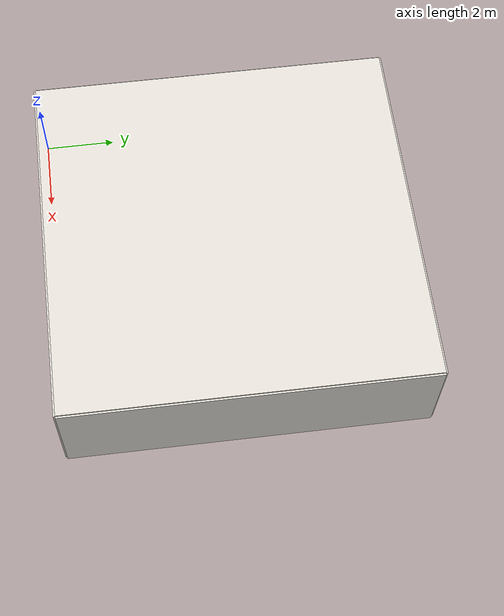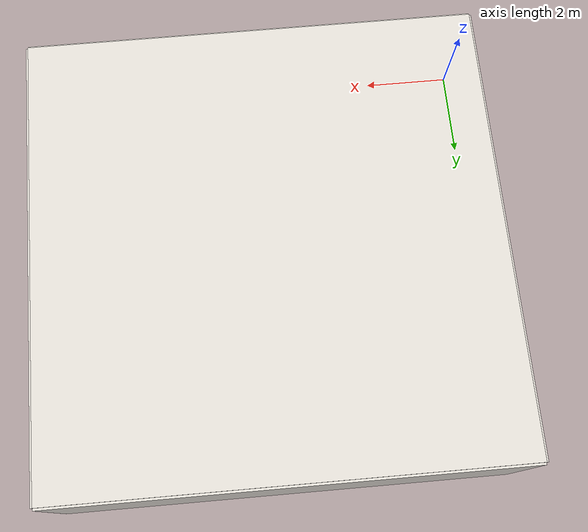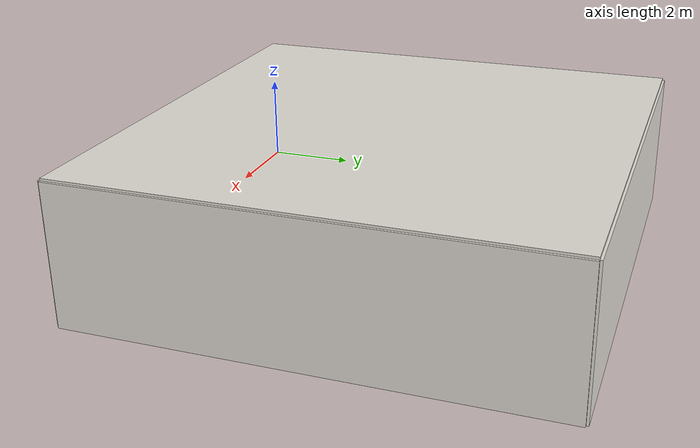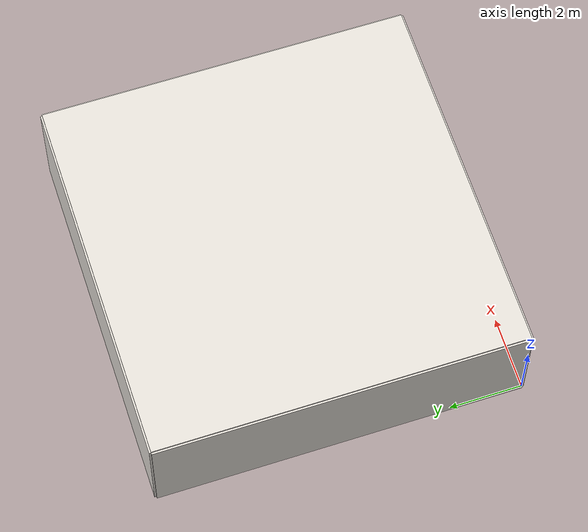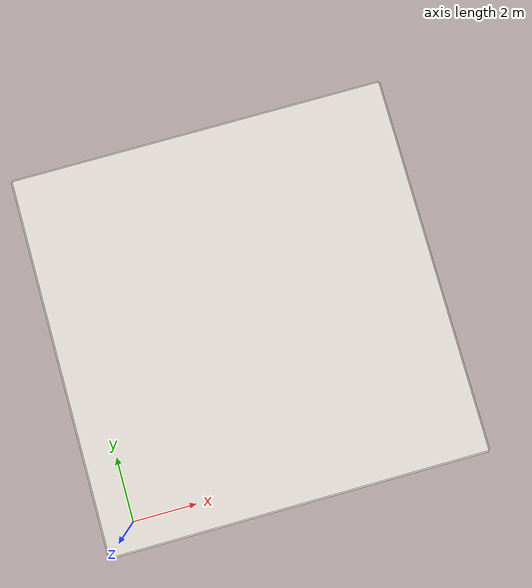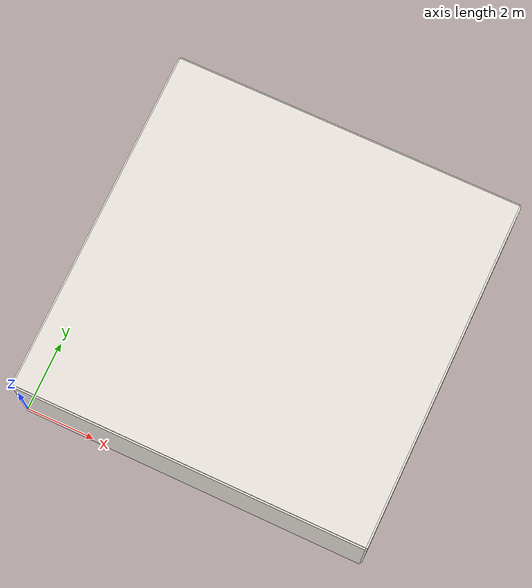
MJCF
<mujoco model="drone_home">

  <!-- ─── Compiler & global options ─────────────────────────────────── -->
  <compiler angle="radian" autolimits="true"/>

  <option
    timestep="0.002"
    gravity="0 0 -9.81"
    integrator="RK4"
    solver="Newton"
    iterations="20"
    tolerance="1e-10"
    impratio="10"
    density="1.2"
    viscosity="1.8e-5"
  />

  <!-- ─── Assets: materials & meshes ────────────────────────────────── -->
  <asset>
    <!-- Floor -->
    <texture name="floor_tex" type="2d" builtin="checker"
             rgb1="0.85 0.82 0.78" rgb2="0.72 0.68 0.62"
             width="512" height="512"/>
    <material name="floor_mat" texture="floor_tex" texrepeat="10 10" reflectance="0.05"/>

    <!-- Walls -->
    <material name="wall_mat" rgba="0.90 0.88 0.85 1.0"/>

    <!-- Drone body -->
    <material name="drone_mat" rgba="0.15 0.15 0.15 1.0" specular="0.4" shininess="0.3"/>
    <material name="arm_mat"   rgba="0.20 0.20 0.20 1.0"/>
    <material name="prop_mat"  rgba="0.08 0.08 0.08 0.85" specular="0.2"/>

    <!-- Household objects -->
    <material name="terracotta" rgba="0.72 0.40 0.20 1.0"/>
    <material name="foliage"    rgba="0.10 0.60 0.10 1.0" specular="0.05"/>
    <material name="soil"       rgba="0.35 0.25 0.12 1.0"/>
    <material name="zone_mat"   rgba="0.65 0.45 0.20 0.5"/>
    <material name="switch_plate" rgba="0.95 0.95 0.95 1.0" specular="0.3"/>
    <material name="switch_paddle" rgba="1.00 0.90 0.00 1.0" specular="0.2"/>

    <!-- Per-drone accent colours (bodies are tinted via rgba override in each body) -->
    <material name="drone0_mat" rgba="0.15 0.65 1.00 0.9" specular="0.5"/>
    <material name="drone1_mat" rgba="1.00 0.45 0.05 0.9" specular="0.5"/>
    <material name="drone2_mat" rgba="0.20 0.90 0.35 0.9" specular="0.5"/>
    <material name="drone3_mat" rgba="0.90 0.15 0.80 0.9" specular="0.5"/>
    <material name="drone4_mat" rgba="1.00 0.95 0.10 0.9" specular="0.5"/>
    <material name="drone5_mat" rgba="0.10 0.85 0.90 0.9" specular="0.5"/>
    <material name="drone6_mat" rgba="1.00 0.25 0.25 0.9" specular="0.5"/>
    <material name="drone7_mat" rgba="0.70 0.40 1.00 0.9" specular="0.5"/>
  </asset>

  <!-- ─── Defaults: joint & actuator limits ─────────────────────────── -->
  <default>
    <joint damping="0.01" armature="0.001"/>
    <geom condim="3" friction="0.8 0.02 0.01"/>

    <!-- Rotor spin joints (free to rotate, no limits) -->
    <default class="rotor_joint">
      <joint type="hinge" axis="0 0 1" damping="1e-6" armature="1e-7"/>
    </default>

    <!-- Propeller geometry — thin disc approximation -->
    <default class="prop_geom">
      <geom type="cylinder" size="0.023 0.002" material="prop_mat"
            contype="0" conaffinity="0"/>
    </default>

    <!-- Arm geom — thin capsule -->
    <default class="arm_geom">
      <geom type="capsule" size="0.005" material="arm_mat"
            contype="0" conaffinity="0"/>
    </default>
  </default>

  <!-- ─── World body ─────────────────────────────────────────────────── -->
  <worldbody>

    <!-- Lighting -->
    <light name="ceiling_main" pos="5 5 2.9" dir="0 0 -1"
           diffuse="0.85 0.85 0.80" specular="0.3 0.3 0.3" castshadow="true"/>
    <light name="ceiling_fill" pos="2 8 2.9" dir="0 0 -1"
           diffuse="0.4 0.4 0.38" specular="0.1 0.1 0.1" castshadow="false"/>

    <!-- Floor (10×10 m tile) -->
    <geom name="floor" type="plane"
          pos="5 5 0" size="5 5 0.1"
          material="floor_mat" condim="3"/>

    <!-- Walls: N, S, E, W (thin boxes, 3 m tall) -->
    <geom name="wall_n" type="box"
          pos="5 10 1.5" size="5 0.05 1.5" material="wall_mat" conaffinity="1"/>
    <geom name="wall_s" type="box"
          pos="5 0  1.5" size="5 0.05 1.5" material="wall_mat" conaffinity="1"/>
    <geom name="wall_e" type="box"
          pos="10 5 1.5" size="0.05 5 1.5" material="wall_mat" conaffinity="1"/>
    <geom name="wall_w" type="box"
          pos="0  5 1.5" size="0.05 5 1.5" material="wall_mat" conaffinity="1"/>
    <!-- Ceiling -->
    <geom name="ceiling" type="box"
          pos="5 5 3.0" size="5 5 0.05" material="wall_mat" conaffinity="1"/>

    <!-- ── Plant pot 0 — pos (2.0, 3.0) ─────────────────────────── -->
    <body name="plant_pot_0" pos="2.0 3.0 0.0">
      <!-- Terracotta pot body -->
      <geom name="pot0_body" type="cylinder" size="0.17 0.225"
            pos="0 0 0.225" material="terracotta" mass="0.5"/>
      <!-- Soil surface -->
      <geom name="pot0_soil" type="cylinder" size="0.16 0.01"
            pos="0 0 0.46" material="soil" contype="0" conaffinity="0"/>
      <!-- Foliage — layered spheres for a bushy look -->
      <geom name="pot0_foliage0" type="sphere" size="0.28"
            pos="0 0 0.78" material="foliage" contype="0" conaffinity="0"/>
      <geom name="pot0_foliage1" type="sphere" size="0.20"
            pos="0.15 0.10 0.95" material="foliage" contype="0" conaffinity="0"/>
      <geom name="pot0_foliage2" type="sphere" size="0.18"
            pos="-0.12 -0.08 0.92" material="foliage" contype="0" conaffinity="0"/>
    </body>

    <!-- ── Plant pot 1 — pos (7.0, 1.5) ─────────────────────────── -->
    <body name="plant_pot_1" pos="7.0 1.5 0.0">
      <geom name="pot1_body" type="cylinder" size="0.17 0.225"
            pos="0 0 0.225" material="terracotta" mass="0.5"/>
      <geom name="pot1_soil" type="cylinder" size="0.16 0.01"
            pos="0 0 0.46" material="soil" contype="0" conaffinity="0"/>
      <geom name="pot1_foliage0" type="sphere" size="0.30"
            pos="0 0 0.80" material="foliage" contype="0" conaffinity="0"/>
      <geom name="pot1_foliage1" type="sphere" size="0.18"
            pos="-0.17 0.12 0.98" material="foliage" contype="0" conaffinity="0"/>
      <geom name="pot1_foliage2" type="sphere" size="0.22"
            pos="0.10 -0.15 0.95" material="foliage" contype="0" conaffinity="0"/>
    </body>

    <!-- ── Plant pot 2 — pos (3.0, 7.0) ─────────────────────────── -->
    <body name="plant_pot_2" pos="3.0 7.0 0.0">
      <geom name="pot2_body" type="cylinder" size="0.17 0.225"
            pos="0 0 0.225" material="terracotta" mass="0.5"/>
      <geom name="pot2_soil" type="cylinder" size="0.16 0.01"
            pos="0 0 0.46" material="soil" contype="0" conaffinity="0"/>
      <geom name="pot2_foliage0" type="sphere" size="0.26"
            pos="0 0 0.75" material="foliage" contype="0" conaffinity="0"/>
      <geom name="pot2_foliage1" type="sphere" size="0.19"
            pos="0.13 -0.11 0.93" material="foliage" contype="0" conaffinity="0"/>
    </body>

    <!-- ── Floor zone 0 — sweep area (5.0, 5.0) ─────────────────── -->
    <geom name="floor_zone_0" type="box"
          pos="5.0 5.0 0.01" size="1.5 1.5 0.01"
          material="zone_mat" contype="0" conaffinity="0"/>

    <!-- ── Floor zone 1 — sweep area (2.0, 8.0) ─────────────────── -->
    <geom name="floor_zone_1" type="box"
          pos="2.0 8.0 0.01" size="1.5 1.5 0.01"
          material="zone_mat" contype="0" conaffinity="0"/>

    <!-- ── Light switch 0 — north wall (9.0, 0.5) at 2.0 m height ─ -->
    <body name="light_switch_0" pos="9.9 0.5 1.5">
      <!-- Back plate mounted flush on east wall (faces -x) -->
      <geom name="ls0_plate"  type="box" size="0.05 0.15 0.20"
            material="switch_plate" mass="0.15"/>
      <geom name="ls0_paddle" type="box" size="0.03 0.08 0.14"
            pos="-0.05 0.0 0.0" material="switch_paddle"
            contype="0" conaffinity="0"/>
    </body>

    <!-- ── Light switch 1 — west wall (0.5, 9.0) at 2.0 m height ── -->
    <body name="light_switch_1" pos="0.1 9.0 1.5">
      <geom name="ls1_plate"  type="box" size="0.05 0.15 0.20"
            material="switch_plate" mass="0.15"/>
      <geom name="ls1_paddle" type="box" size="0.03 0.08 0.14"
            pos="0.05 0.0 0.0" material="switch_paddle"
            contype="0" conaffinity="0"/>
    </body>

    <body name="drone_0" pos="1.0 1.0 0.3">
      <freejoint name="drone_0_freejoint"/>

      <!-- Central body box -->
      <geom name="drone_0_body" type="box"
            size="0.019 0.019 0.006"
            material="drone0_mat" mass="0.020"
            condim="3"/>

      <!-- Battery slab (bottom, heavier — lowers CoM for stability) -->
      <geom name="drone_0_batt" type="box"
            size="0.016 0.012 0.004" pos="0 0 -0.007"
            rgba="0.1 0.1 0.4 1.0" mass="0.007"
            contype="0" conaffinity="0"/>

      <!-- Arms (4 × diagonal capsule) -->
      <geom class="arm_geom" name="drone_0_arm0"
            fromto="0 0 0  0.0326  0.0326 0"/>
      <geom class="arm_geom" name="drone_0_arm1"
            fromto="0 0 0  0.0326 -0.0326 0"/>
      <geom class="arm_geom" name="drone_0_arm2"
            fromto="0 0 0 -0.0326  0.0326 0"/>
      <geom class="arm_geom" name="drone_0_arm3"
            fromto="0 0 0 -0.0326 -0.0326 0"/>

      <!-- Motor mounts + rotors (each motor body has mass + inertia) -->
      <!-- Motor 0 — front-right (+x+y), CW -->
      <body name="drone_0_motor0" pos="0.0326 0.0326 0.004">
        <geom type="cylinder" size="0.006 0.004" rgba="0.3 0.3 0.3 1.0"
              mass="0.002" contype="0" conaffinity="0"/>
        <joint name="drone_0_rotor0" class="rotor_joint"/>
        <geom class="prop_geom" name="drone_0_prop0" pos="0 0 0.004"/>
      </body>
      <!-- Motor 1 — front-left (+x-y), CCW -->
      <body name="drone_0_motor1" pos="0.0326 -0.0326 0.004">
        <geom type="cylinder" size="0.006 0.004" rgba="0.3 0.3 0.3 1.0"
              mass="0.002" contype="0" conaffinity="0"/>
        <joint name="drone_0_rotor1" class="rotor_joint"/>
        <geom class="prop_geom" name="drone_0_prop1" pos="0 0 0.004"/>
      </body>
      <!-- Motor 2 — rear-right (-x+y), CCW -->
      <body name="drone_0_motor2" pos="-0.0326 0.0326 0.004">
        <geom type="cylinder" size="0.006 0.004" rgba="0.3 0.3 0.3 1.0"
              mass="0.002" contype="0" conaffinity="0"/>
        <joint name="drone_0_rotor2" class="rotor_joint"/>
        <geom class="prop_geom" name="drone_0_prop2" pos="0 0 0.004"/>
      </body>
      <!-- Motor 3 — rear-left (-x-y), CW -->
      <body name="drone_0_motor3" pos="-0.0326 -0.0326 0.004">
        <geom type="cylinder" size="0.006 0.004" rgba="0.3 0.3 0.3 1.0"
              mass="0.002" contype="0" conaffinity="0"/>
        <joint name="drone_0_rotor3" class="rotor_joint"/>
        <geom class="prop_geom" name="drone_0_prop3" pos="0 0 0.004"/>
      </body>

      <!-- IMU site (used to read accelerometer / gyro in code) -->
      <site name="drone_0_imu" pos="0 0 0" size="0.003"/>
    </body>

    <body name="drone_1" pos="2.0 1.0 0.3">
      <freejoint name="drone_1_freejoint"/>
      <geom name="drone_1_body" type="box" size="0.019 0.019 0.006"
            material="drone1_mat" mass="0.020" condim="3"/>
      <geom name="drone_1_batt" type="box" size="0.016 0.012 0.004"
            pos="0 0 -0.007" rgba="0.1 0.1 0.4 1.0" mass="0.007"
            contype="0" conaffinity="0"/>
      <geom class="arm_geom" name="drone_1_arm0"
            fromto="0 0 0  0.0326  0.0326 0"/>
      <geom class="arm_geom" name="drone_1_arm1"
            fromto="0 0 0  0.0326 -0.0326 0"/>
      <geom class="arm_geom" name="drone_1_arm2"
            fromto="0 0 0 -0.0326  0.0326 0"/>
      <geom class="arm_geom" name="drone_1_arm3"
            fromto="0 0 0 -0.0326 -0.0326 0"/>
      <body name="drone_1_motor0" pos="0.0326 0.0326 0.004">
        <geom type="cylinder" size="0.006 0.004" rgba="0.3 0.3 0.3 1.0"
              mass="0.002" contype="0" conaffinity="0"/>
        <joint name="drone_1_rotor0" class="rotor_joint"/>
        <geom class="prop_geom" name="drone_1_prop0" pos="0 0 0.004"/>
      </body>
      <body name="drone_1_motor1" pos="0.0326 -0.0326 0.004">
        <geom type="cylinder" size="0.006 0.004" rgba="0.3 0.3 0.3 1.0"
              mass="0.002" contype="0" conaffinity="0"/>
        <joint name="drone_1_rotor1" class="rotor_joint"/>
        <geom class="prop_geom" name="drone_1_prop1" pos="0 0 0.004"/>
      </body>
      <body name="drone_1_motor2" pos="-0.0326 0.0326 0.004">
        <geom type="cylinder" size="0.006 0.004" rgba="0.3 0.3 0.3 1.0"
              mass="0.002" contype="0" conaffinity="0"/>
        <joint name="drone_1_rotor2" class="rotor_joint"/>
        <geom class="prop_geom" name="drone_1_prop2" pos="0 0 0.004"/>
      </body>
      <body name="drone_1_motor3" pos="-0.0326 -0.0326 0.004">
        <geom type="cylinder" size="0.006 0.004" rgba="0.3 0.3 0.3 1.0"
              mass="0.002" contype="0" conaffinity="0"/>
        <joint name="drone_1_rotor3" class="rotor_joint"/>
        <geom class="prop_geom" name="drone_1_prop3" pos="0 0 0.004"/>
      </body>
      <site name="drone_1_imu" pos="0 0 0" size="0.003"/>
    </body>

    <body name="drone_2" pos="3.0 1.0 0.3">
      <freejoint name="drone_2_freejoint"/>
      <geom name="drone_2_body" type="box" size="0.019 0.019 0.006"
            material="drone2_mat" mass="0.020" condim="3"/>
      <geom name="drone_2_batt" type="box" size="0.016 0.012 0.004"
            pos="0 0 -0.007" rgba="0.1 0.1 0.4 1.0" mass="0.007"
            contype="0" conaffinity="0"/>
      <geom class="arm_geom" name="drone_2_arm0"
            fromto="0 0 0  0.0326  0.0326 0"/>
      <geom class="arm_geom" name="drone_2_arm1"
            fromto="0 0 0  0.0326 -0.0326 0"/>
      <geom class="arm_geom" name="drone_2_arm2"
            fromto="0 0 0 -0.0326  0.0326 0"/>
      <geom class="arm_geom" name="drone_2_arm3"
            fromto="0 0 0 -0.0326 -0.0326 0"/>
      <body name="drone_2_motor0" pos="0.0326 0.0326 0.004">
        <geom type="cylinder" size="0.006 0.004" rgba="0.3 0.3 0.3 1.0"
              mass="0.002" contype="0" conaffinity="0"/>
        <joint name="drone_2_rotor0" class="rotor_joint"/>
        <geom class="prop_geom" name="drone_2_prop0" pos="0 0 0.004"/>
      </body>
      <body name="drone_2_motor1" pos="0.0326 -0.0326 0.004">
        <geom type="cylinder" size="0.006 0.004" rgba="0.3 0.3 0.3 1.0"
              mass="0.002" contype="0" conaffinity="0"/>
        <joint name="drone_2_rotor1" class="rotor_joint"/>
        <geom class="prop_geom" name="drone_2_prop1" pos="0 0 0.004"/>
      </body>
      <body name="drone_2_motor2" pos="-0.0326 0.0326 0.004">
        <geom type="cylinder" size="0.006 0.004" rgba="0.3 0.3 0.3 1.0"
              mass="0.002" contype="0" conaffinity="0"/>
        <joint name="drone_2_rotor2" class="rotor_joint"/>
        <geom class="prop_geom" name="drone_2_prop2" pos="0 0 0.004"/>
      </body>
      <body name="drone_2_motor3" pos="-0.0326 -0.0326 0.004">
        <geom type="cylinder" size="0.006 0.004" rgba="0.3 0.3 0.3 1.0"
              mass="0.002" contype="0" conaffinity="0"/>
        <joint name="drone_2_rotor3" class="rotor_joint"/>
        <geom class="prop_geom" name="drone_2_prop3" pos="0 0 0.004"/>
      </body>
      <site name="drone_2_imu" pos="0 0 0" size="0.003"/>
    </body>

  </worldbody>

  <actuator>
    <!-- drone_0 -->
    <velocity name="drone_0_m0" joint="drone_0_rotor0" kv="0.0001" forcelimited="true" forcerange="-0.010 0.015"/>
    <velocity name="drone_0_m1" joint="drone_0_rotor1" kv="0.0001" forcelimited="true" forcerange="-0.010 0.015"/>
    <velocity name="drone_0_m2" joint="drone_0_rotor2" kv="0.0001" forcelimited="true" forcerange="-0.010 0.015"/>
    <velocity name="drone_0_m3" joint="drone_0_rotor3" kv="0.0001" forcelimited="true" forcerange="-0.010 0.015"/>
    <!-- drone_1 -->
    <velocity name="drone_1_m0" joint="drone_1_rotor0" kv="0.0001" forcelimited="true" forcerange="-0.010 0.015"/>
    <velocity name="drone_1_m1" joint="drone_1_rotor1" kv="0.0001" forcelimited="true" forcerange="-0.010 0.015"/>
    <velocity name="drone_1_m2" joint="drone_1_rotor2" kv="0.0001" forcelimited="true" forcerange="-0.010 0.015"/>
    <velocity name="drone_1_m3" joint="drone_1_rotor3" kv="0.0001" forcelimited="true" forcerange="-0.010 0.015"/>
    <!-- drone_2 -->
    <velocity name="drone_2_m0" joint="drone_2_rotor0" kv="0.0001" forcelimited="true" forcerange="-0.010 0.015"/>
    <velocity name="drone_2_m1" joint="drone_2_rotor1" kv="0.0001" forcelimited="true" forcerange="-0.010 0.015"/>
    <velocity name="drone_2_m2" joint="drone_2_rotor2" kv="0.0001" forcelimited="true" forcerange="-0.010 0.015"/>
    <velocity name="drone_2_m3" joint="drone_2_rotor3" kv="0.0001" forcelimited="true" forcerange="-0.010 0.015"/>
  </actuator>

  <sensor>
    <!-- drone 0 -->
    <accelerometer name="drone_0_acc"  site="drone_0_imu"/>
    <gyro          name="drone_0_gyro" site="drone_0_imu"/>
    <velocimeter   name="drone_0_vel"  site="drone_0_imu"/>
    <framepos      name="drone_0_pos"  objtype="site" objname="drone_0_imu"/>
    <!-- drone 1 -->
    <accelerometer name="drone_1_acc"  site="drone_1_imu"/>
    <gyro          name="drone_1_gyro" site="drone_1_imu"/>
    <velocimeter   name="drone_1_vel"  site="drone_1_imu"/>
    <framepos      name="drone_1_pos"  objtype="site" objname="drone_1_imu"/>
    <!-- drone 2 -->
    <accelerometer name="drone_2_acc"  site="drone_2_imu"/>
    <gyro          name="drone_2_gyro" site="drone_2_imu"/>
    <velocimeter   name="drone_2_vel"  site="drone_2_imu"/>
    <framepos      name="drone_2_pos"  objtype="site" objname="drone_2_imu"/>
  </sensor>

</mujoco>
